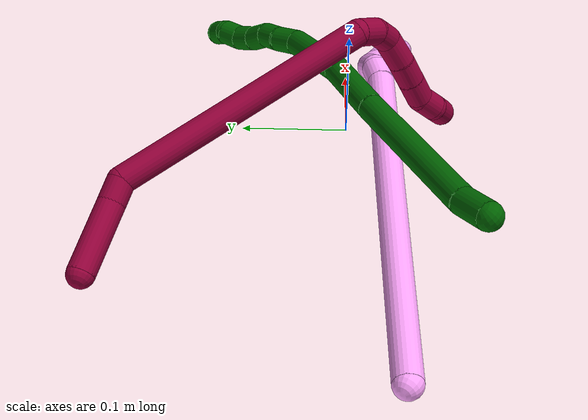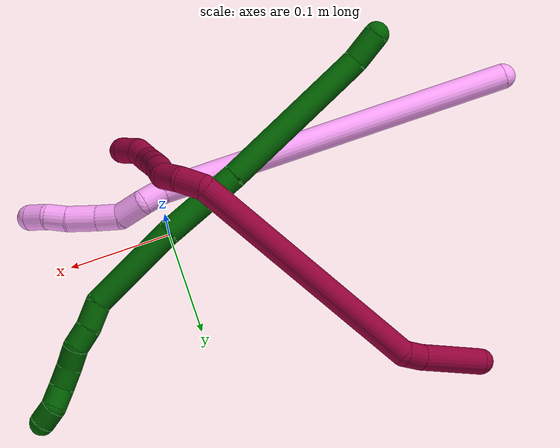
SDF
<sdf version="1.7">
 <world name="default">
  <model name="4">
   <static>0</static>
   <link name="4">
    <collision name="collision-cylinder-e_1_1_4">
     <pose>0.039311 -0.075911 -0.1561 2.68897 0.222715 0.904171</pose>
     <geometry><cylinder><radius>0.0125</radius><length>0.35595</length></cylinder></geometry>
     <surface>
      <friction><ode><mu>1.16</mu><mu2>1.16</mu2><slip1>0</slip1><slip2>0</slip2></ode></friction>
      <contact><ode><kp>1e+06</kp><kd>1</kd><max_vel>0</max_vel><min_depth>0.001</min_depth></ode></contact>
     </surface>
    </collision>
    <visual name="visual-cylinder-e_1_1_4">
     <pose>0.039311 -0.075911 -0.1561 2.68897 0.222715 0.904171</pose>
     <geometry><cylinder><radius>0.0125</radius><length>0.35595</length></cylinder></geometry>
     <material><ambient>1 0.65098 0.996078 1</ambient></material>
    </visual>
    <collision name="collision-cylinder-e_2_4_5">
     <pose>0.081927 -0.158037 -0.320658 2.50789 0.305049 0.87675</pose>
     <geometry><cylinder><radius>0.0125</radius><length>0.022007</length></cylinder></geometry>
     <surface>
      <friction><ode><mu>1.16</mu><mu2>1.16</mu2><slip1>0</slip1><slip2>0</slip2></ode></friction>
      <contact><ode><kp>1e+06</kp><kd>1</kd><max_vel>0</max_vel><min_depth>0.001</min_depth></ode></contact>
     </surface>
    </collision>
    <visual name="visual-cylinder-e_2_4_5">
     <pose>0.081927 -0.158037 -0.320658 2.50789 0.305049 0.87675</pose>
     <geometry><cylinder><radius>0.0125</radius><length>0.022007</length></cylinder></geometry>
     <material><ambient>1 0.65098 0.996078 1</ambient></material>
    </visual>
    <collision name="collision-cylinder-e_3_5_6">
     <pose>0.095321 -0.166993 -0.338134 2.84658 0.819386 2.48225</pose>
     <geometry><cylinder><radius>0.0125</radius><length>0.027614</length></cylinder></geometry>
     <surface>
      <friction><ode><mu>1.16</mu><mu2>1.16</mu2><slip1>0</slip1><slip2>0</slip2></ode></friction>
      <contact><ode><kp>1e+06</kp><kd>1</kd><max_vel>0</max_vel><min_depth>0.001</min_depth></ode></contact>
     </surface>
    </collision>
    <visual name="visual-cylinder-e_3_5_6">
     <pose>0.095321 -0.166993 -0.338134 2.84658 0.819386 2.48225</pose>
     <geometry><cylinder><radius>0.0125</radius><length>0.027614</length></cylinder></geometry>
     <material><ambient>1 0.65098 0.996078 1</ambient></material>
    </visual>
    <collision name="collision-cylinder-e_4_6_7">
     <pose>0.1105 -0.168808 -0.357362 -3.05118 0.460924 -2.76066</pose>
     <geometry><cylinder><radius>0.0125</radius><length>0.022892</length></cylinder></geometry>
     <surface>
      <friction><ode><mu>1.16</mu><mu2>1.16</mu2><slip1>0</slip1><slip2>0</slip2></ode></friction>
      <contact><ode><kp>1e+06</kp><kd>1</kd><max_vel>0</max_vel><min_depth>0.001</min_depth></ode></contact>
     </surface>
    </collision>
    <visual name="visual-cylinder-e_4_6_7">
     <pose>0.1105 -0.168808 -0.357362 -3.05118 0.460924 -2.76066</pose>
     <geometry><cylinder><radius>0.0125</radius><length>0.022892</length></cylinder></geometry>
     <material><ambient>1 0.65098 0.996078 1</ambient></material>
    </visual>
    <collision name="collision-cylinder-e_5_7_8">
     <pose>0.120918 -0.167309 -0.381543 -3.10058 0.363927 -2.91956</pose>
     <geometry><cylinder><radius>0.0125</radius><length>0.029927</length></cylinder></geometry>
     <surface>
      <friction><ode><mu>1.16</mu><mu2>1.16</mu2><slip1>0</slip1><slip2>0</slip2></ode></friction>
      <contact><ode><kp>1e+06</kp><kd>1</kd><max_vel>0</max_vel><min_depth>0.001</min_depth></ode></contact>
     </surface>
    </collision>
    <visual name="visual-cylinder-e_5_7_8">
     <pose>0.120918 -0.167309 -0.381543 -3.10058 0.363927 -2.91956</pose>
     <geometry><cylinder><radius>0.0125</radius><length>0.029927</length></cylinder></geometry>
     <material><ambient>1 0.65098 0.996078 1</ambient></material>
    </visual>
    <collision name="collision-cylinder-e_6_8_9">
     <pose>0.129749 -0.164682 -0.405223 -2.93319 0.339535 -2.04596</pose>
     <geometry><cylinder><radius>0.0125</radius><length>0.021047</length></cylinder></geometry>
     <surface>
      <friction><ode><mu>1.16</mu><mu2>1.16</mu2><slip1>0</slip1><slip2>0</slip2></ode></friction>
      <contact><ode><kp>1e+06</kp><kd>1</kd><max_vel>0</max_vel><min_depth>0.001</min_depth></ode></contact>
     </surface>
    </collision>
    <visual name="visual-cylinder-e_6_8_9">
     <pose>0.129749 -0.164682 -0.405223 -2.93319 0.339535 -2.04596</pose>
     <geometry><cylinder><radius>0.0125</radius><length>0.021047</length></cylinder></geometry>
     <material><ambient>1 0.65098 0.996078 1</ambient></material>
    </visual>
    <collision name="collision-cylinder-e_7_9_2">
     <pose>0.139239 -0.160163 -0.422918 -2.84209 0.621449 -2.26311</pose>
     <geometry><cylinder><radius>0.0125</radius><length>0.020563</length></cylinder></geometry>
     <surface>
      <friction><ode><mu>1.16</mu><mu2>1.16</mu2><slip1>0</slip1><slip2>0</slip2></ode></friction>
      <contact><ode><kp>1e+06</kp><kd>1</kd><max_vel>0</max_vel><min_depth>0.001</min_depth></ode></contact>
     </surface>
    </collision>
    <visual name="visual-cylinder-e_7_9_2">
     <pose>0.139239 -0.160163 -0.422918 -2.84209 0.621449 -2.26311</pose>
     <geometry><cylinder><radius>0.0125</radius><length>0.020563</length></cylinder></geometry>
     <material><ambient>1 0.65098 0.996078 1</ambient></material>
    </visual>
    <collision name="collision-sphere-2">
     <pose>0.145226 -0.157697 -0.430905 0 -0 0</pose>
     <geometry><sphere><radius>0.0125</radius></sphere></geometry>
     <surface>
      <friction><ode><mu>1.16</mu><mu2>1.16</mu2><slip1>0</slip1><slip2>0</slip2></ode></friction>
      <contact><ode><kp>1e+06</kp><kd>1</kd><max_vel>0</max_vel><min_depth>0.001</min_depth></ode></contact>
     </surface>
    </collision>
    <visual name="visual-sphere-2">
     <pose>0.145226 -0.157697 -0.430905 0 -0 0</pose>
     <geometry><sphere><radius>0.0125</radius></sphere></geometry>
     <material><ambient>1 0.65098 0.996078 1</ambient></material>
    </visual>
    <collision name="collision-sphere-9">
     <pose>0.133253 -0.162629 -0.414931 0 -0 0</pose>
     <geometry><sphere><radius>0.0125</radius></sphere></geometry>
     <surface>
      <friction><ode><mu>1.16</mu><mu2>1.16</mu2><slip1>0</slip1><slip2>0</slip2></ode></friction>
      <contact><ode><kp>1e+06</kp><kd>1</kd><max_vel>0</max_vel><min_depth>0.001</min_depth></ode></contact>
     </surface>
    </collision>
    <visual name="visual-sphere-9">
     <pose>0.133253 -0.162629 -0.414931 0 -0 0</pose>
     <geometry><sphere><radius>0.0125</radius></sphere></geometry>
     <material><ambient>1 0.65098 0.996078 1</ambient></material>
    </visual>
    <collision name="collision-sphere-4">
     <pose>0.078622 -0.151823 -0.3122 0 -0 0</pose>
     <geometry><sphere><radius>0.0125</radius></sphere></geometry>
     <surface>
      <friction><ode><mu>1.16</mu><mu2>1.16</mu2><slip1>0</slip1><slip2>0</slip2></ode></friction>
      <contact><ode><kp>1e+06</kp><kd>1</kd><max_vel>0</max_vel><min_depth>0.001</min_depth></ode></contact>
     </surface>
    </collision>
    <visual name="visual-sphere-4">
     <pose>0.078622 -0.151823 -0.3122 0 -0 0</pose>
     <geometry><sphere><radius>0.0125</radius></sphere></geometry>
     <material><ambient>1 0.65098 0.996078 1</ambient></material>
    </visual>
    <collision name="collision-sphere-1">
     <geometry><sphere><radius>0.0125</radius></sphere></geometry>
     <surface>
      <friction><ode><mu>1.16</mu><mu2>1.16</mu2><slip1>0</slip1><slip2>0</slip2></ode></friction>
      <contact><ode><kp>1e+06</kp><kd>1</kd><max_vel>0</max_vel><min_depth>0.001</min_depth></ode></contact>
     </surface>
    </collision>
    <visual name="visual-sphere-1">
     <geometry><sphere><radius>0.0125</radius></sphere></geometry>
     <material><ambient>1 0.65098 0.996078 1</ambient></material>
    </visual>
    <collision name="collision-sphere-8">
     <pose>0.126244 -0.166735 -0.395515 0 -0 0</pose>
     <geometry><sphere><radius>0.0125</radius></sphere></geometry>
     <surface>
      <friction><ode><mu>1.16</mu><mu2>1.16</mu2><slip1>0</slip1><slip2>0</slip2></ode></friction>
      <contact><ode><kp>1e+06</kp><kd>1</kd><max_vel>0</max_vel><min_depth>0.001</min_depth></ode></contact>
     </surface>
    </collision>
    <visual name="visual-sphere-8">
     <pose>0.126244 -0.166735 -0.395515 0 -0 0</pose>
     <geometry><sphere><radius>0.0125</radius></sphere></geometry>
     <material><ambient>1 0.65098 0.996078 1</ambient></material>
    </visual>
    <collision name="collision-sphere-5">
     <pose>0.085231 -0.164252 -0.329116 0 -0 0</pose>
     <geometry><sphere><radius>0.0125</radius></sphere></geometry>
     <surface>
      <friction><ode><mu>1.16</mu><mu2>1.16</mu2><slip1>0</slip1><slip2>0</slip2></ode></friction>
      <contact><ode><kp>1e+06</kp><kd>1</kd><max_vel>0</max_vel><min_depth>0.001</min_depth></ode></contact>
     </surface>
    </collision>
    <visual name="visual-sphere-5">
     <pose>0.085231 -0.164252 -0.329116 0 -0 0</pose>
     <geometry><sphere><radius>0.0125</radius></sphere></geometry>
     <material><ambient>1 0.65098 0.996078 1</ambient></material>
    </visual>
    <collision name="collision-sphere-6">
     <pose>0.10541 -0.169733 -0.347152 0 -0 0</pose>
     <geometry><sphere><radius>0.0125</radius></sphere></geometry>
     <surface>
      <friction><ode><mu>1.16</mu><mu2>1.16</mu2><slip1>0</slip1><slip2>0</slip2></ode></friction>
      <contact><ode><kp>1e+06</kp><kd>1</kd><max_vel>0</max_vel><min_depth>0.001</min_depth></ode></contact>
     </surface>
    </collision>
    <visual name="visual-sphere-6">
     <pose>0.10541 -0.169733 -0.347152 0 -0 0</pose>
     <geometry><sphere><radius>0.0125</radius></sphere></geometry>
     <material><ambient>1 0.65098 0.996078 1</ambient></material>
    </visual>
    <collision name="collision-sphere-7">
     <pose>0.115591 -0.167882 -0.367572 0 -0 0</pose>
     <geometry><sphere><radius>0.0125</radius></sphere></geometry>
     <surface>
      <friction><ode><mu>1.16</mu><mu2>1.16</mu2><slip1>0</slip1><slip2>0</slip2></ode></friction>
      <contact><ode><kp>1e+06</kp><kd>1</kd><max_vel>0</max_vel><min_depth>0.001</min_depth></ode></contact>
     </surface>
    </collision>
    <visual name="visual-sphere-7">
     <pose>0.115591 -0.167882 -0.367572 0 -0 0</pose>
     <geometry><sphere><radius>0.0125</radius></sphere></geometry>
     <material><ambient>1 0.65098 0.996078 1</ambient></material>
    </visual>
    <inertial>
     <pose>0.06034 -0.101482 -0.217564 0 -0 0</pose>
     <mass>0.5</mass>
     <inertia>
      <ixx>0.00517</ixx>
      <ixy>0</ixy>
      <ixz>0</ixz>
      <iyy>0.001076</iyy>
      <iyz>0</iyz>
      <izz>0.000737</izz>
     </inertia>
    </inertial>
   </link>
   <pose>-0.359016 -0.041749 0.012371 -1.86987 1.06226 0.833143</pose>
  </model>
  <model name="6">
   <static>0</static>
   <link name="6">
    <collision name="collision-cylinder-e_1_1_4">
     <pose>0.010754 0.01215 0.002873 -1.33861 0.711066 -0.571432</pose>
     <geometry><cylinder><radius>0.0125</radius><length>0.032956</length></cylinder></geometry>
     <surface>
      <friction><ode><mu>1.16</mu><mu2>1.16</mu2><slip1>0</slip1><slip2>0</slip2></ode></friction>
      <contact><ode><kp>1e+06</kp><kd>1</kd><max_vel>0</max_vel><min_depth>0.001</min_depth></ode></contact>
     </surface>
    </collision>
    <visual name="visual-cylinder-e_1_1_4">
     <pose>0.010754 0.01215 0.002873 -1.33861 0.711066 -0.571432</pose>
     <geometry><cylinder><radius>0.0125</radius><length>0.032956</length></cylinder></geometry>
     <material><ambient>0 0.392157 0.003922 1</ambient></material>
    </visual>
    <collision name="collision-cylinder-e_2_4_5">
     <pose>0.082979 0.072402 0.023586 -1.21564 0.8753 -0.6294</pose>
     <geometry><cylinder><radius>0.0125</radius><length>0.160134</length></cylinder></geometry>
     <surface>
      <friction><ode><mu>1.16</mu><mu2>1.16</mu2><slip1>0</slip1><slip2>0</slip2></ode></friction>
      <contact><ode><kp>1e+06</kp><kd>1</kd><max_vel>0</max_vel><min_depth>0.001</min_depth></ode></contact>
     </surface>
    </collision>
    <visual name="visual-cylinder-e_2_4_5">
     <pose>0.082979 0.072402 0.023586 -1.21564 0.8753 -0.6294</pose>
     <geometry><cylinder><radius>0.0125</radius><length>0.160134</length></cylinder></geometry>
     <material><ambient>0 0.392157 0.003922 1</ambient></material>
    </visual>
    <collision name="collision-cylinder-e_3_5_6">
     <pose>0.17671 0.144339 0.048089 -1.29823 0.916433 -0.716254</pose>
     <geometry><cylinder><radius>0.0125</radius><length>0.081321</length></cylinder></geometry>
     <surface>
      <friction><ode><mu>1.16</mu><mu2>1.16</mu2><slip1>0</slip1><slip2>0</slip2></ode></friction>
      <contact><ode><kp>1e+06</kp><kd>1</kd><max_vel>0</max_vel><min_depth>0.001</min_depth></ode></contact>
     </surface>
    </collision>
    <visual name="visual-cylinder-e_3_5_6">
     <pose>0.17671 0.144339 0.048089 -1.29823 0.916433 -0.716254</pose>
     <geometry><cylinder><radius>0.0125</radius><length>0.081321</length></cylinder></geometry>
     <material><ambient>0 0.392157 0.003922 1</ambient></material>
    </visual>
    <collision name="collision-cylinder-e_4_6_7">
     <pose>0.243275 0.200499 0.059023 -1.43939 0.810761 -0.719578</pose>
     <geometry><cylinder><radius>0.0125</radius><length>0.094656</length></cylinder></geometry>
     <surface>
      <friction><ode><mu>1.16</mu><mu2>1.16</mu2><slip1>0</slip1><slip2>0</slip2></ode></friction>
      <contact><ode><kp>1e+06</kp><kd>1</kd><max_vel>0</max_vel><min_depth>0.001</min_depth></ode></contact>
     </surface>
    </collision>
    <visual name="visual-cylinder-e_4_6_7">
     <pose>0.243275 0.200499 0.059023 -1.43939 0.810761 -0.719578</pose>
     <geometry><cylinder><radius>0.0125</radius><length>0.094656</length></cylinder></geometry>
     <material><ambient>0 0.392157 0.003922 1</ambient></material>
    </visual>
    <collision name="collision-cylinder-e_5_7_8">
     <pose>0.282869 0.243773 0.066863 -1.25586 0.430597 -0.314885</pose>
     <geometry><cylinder><radius>0.0125</radius><length>0.025344</length></cylinder></geometry>
     <surface>
      <friction><ode><mu>1.16</mu><mu2>1.16</mu2><slip1>0</slip1><slip2>0</slip2></ode></friction>
      <contact><ode><kp>1e+06</kp><kd>1</kd><max_vel>0</max_vel><min_depth>0.001</min_depth></ode></contact>
     </surface>
    </collision>
    <visual name="visual-cylinder-e_5_7_8">
     <pose>0.282869 0.243773 0.066863 -1.25586 0.430597 -0.314885</pose>
     <geometry><cylinder><radius>0.0125</radius><length>0.025344</length></cylinder></geometry>
     <material><ambient>0 0.392157 0.003922 1</ambient></material>
    </visual>
    <collision name="collision-cylinder-e_6_8_9">
     <pose>0.294584 0.263793 0.072388 -1.35821 0.605632 -0.494063</pose>
     <geometry><cylinder><radius>0.0125</radius><length>0.022575</length></cylinder></geometry>
     <surface>
      <friction><ode><mu>1.16</mu><mu2>1.16</mu2><slip1>0</slip1><slip2>0</slip2></ode></friction>
      <contact><ode><kp>1e+06</kp><kd>1</kd><max_vel>0</max_vel><min_depth>0.001</min_depth></ode></contact>
     </surface>
    </collision>
    <visual name="visual-cylinder-e_6_8_9">
     <pose>0.294584 0.263793 0.072388 -1.35821 0.605632 -0.494063</pose>
     <geometry><cylinder><radius>0.0125</radius><length>0.022575</length></cylinder></geometry>
     <material><ambient>0 0.392157 0.003922 1</ambient></material>
    </visual>
    <collision name="collision-cylinder-e_7_9_10">
     <pose>0.304154 0.283091 0.07439 -1.56646 0.298247 -0.296974</pose>
     <geometry><cylinder><radius>0.0125</radius><length>0.021398</length></cylinder></geometry>
     <surface>
      <friction><ode><mu>1.16</mu><mu2>1.16</mu2><slip1>0</slip1><slip2>0</slip2></ode></friction>
      <contact><ode><kp>1e+06</kp><kd>1</kd><max_vel>0</max_vel><min_depth>0.001</min_depth></ode></contact>
     </surface>
    </collision>
    <visual name="visual-cylinder-e_7_9_10">
     <pose>0.304154 0.283091 0.07439 -1.56646 0.298247 -0.296974</pose>
     <geometry><cylinder><radius>0.0125</radius><length>0.021398</length></cylinder></geometry>
     <material><ambient>0 0.392157 0.003922 1</ambient></material>
    </visual>
    <collision name="collision-cylinder-e_8_10_11">
     <pose>0.311344 0.302974 0.076278 -1.38213 0.390452 -0.324248</pose>
     <geometry><cylinder><radius>0.0125</radius><length>0.021263</length></cylinder></geometry>
     <surface>
      <friction><ode><mu>1.16</mu><mu2>1.16</mu2><slip1>0</slip1><slip2>0</slip2></ode></friction>
      <contact><ode><kp>1e+06</kp><kd>1</kd><max_vel>0</max_vel><min_depth>0.001</min_depth></ode></contact>
     </surface>
    </collision>
    <visual name="visual-cylinder-e_8_10_11">
     <pose>0.311344 0.302974 0.076278 -1.38213 0.390452 -0.324248</pose>
     <geometry><cylinder><radius>0.0125</radius><length>0.021263</length></cylinder></geometry>
     <material><ambient>0 0.392157 0.003922 1</ambient></material>
    </visual>
    <collision name="collision-cylinder-e_9_11_12">
     <pose>0.319912 0.320574 0.082589 -1.05853 0.460627 -0.272601</pose>
     <geometry><cylinder><radius>0.0125</radius><length>0.020345</length></cylinder></geometry>
     <surface>
      <friction><ode><mu>1.16</mu><mu2>1.16</mu2><slip1>0</slip1><slip2>0</slip2></ode></friction>
      <contact><ode><kp>1e+06</kp><kd>1</kd><max_vel>0</max_vel><min_depth>0.001</min_depth></ode></contact>
     </surface>
    </collision>
    <visual name="visual-cylinder-e_9_11_12">
     <pose>0.319912 0.320574 0.082589 -1.05853 0.460627 -0.272601</pose>
     <geometry><cylinder><radius>0.0125</radius><length>0.020345</length></cylinder></geometry>
     <material><ambient>0 0.392157 0.003922 1</ambient></material>
    </visual>
    <collision name="collision-cylinder-e_10_12_2">
     <pose>0.329817 0.336912 0.086264 -1.66478 0.568094 -0.620774</pose>
     <geometry><cylinder><radius>0.0125</radius><length>0.020008</length></cylinder></geometry>
     <surface>
      <friction><ode><mu>1.16</mu><mu2>1.16</mu2><slip1>0</slip1><slip2>0</slip2></ode></friction>
      <contact><ode><kp>1e+06</kp><kd>1</kd><max_vel>0</max_vel><min_depth>0.001</min_depth></ode></contact>
     </surface>
    </collision>
    <visual name="visual-cylinder-e_10_12_2">
     <pose>0.329817 0.336912 0.086264 -1.66478 0.568094 -0.620774</pose>
     <geometry><cylinder><radius>0.0125</radius><length>0.020008</length></cylinder></geometry>
     <material><ambient>0 0.392157 0.003922 1</ambient></material>
    </visual>
    <collision name="collision-sphere-2">
     <pose>0.335199 0.345307 0.085472 0 -0 0</pose>
     <geometry><sphere><radius>0.0125</radius></sphere></geometry>
     <surface>
      <friction><ode><mu>1.16</mu><mu2>1.16</mu2><slip1>0</slip1><slip2>0</slip2></ode></friction>
      <contact><ode><kp>1e+06</kp><kd>1</kd><max_vel>0</max_vel><min_depth>0.001</min_depth></ode></contact>
     </surface>
    </collision>
    <visual name="visual-sphere-2">
     <pose>0.335199 0.345307 0.085472 0 -0 0</pose>
     <geometry><sphere><radius>0.0125</radius></sphere></geometry>
     <material><ambient>0 0.392157 0.003922 1</ambient></material>
    </visual>
    <collision name="collision-sphere-12">
     <pose>0.324434 0.328516 0.087055 0 -0 0</pose>
     <geometry><sphere><radius>0.0125</radius></sphere></geometry>
     <surface>
      <friction><ode><mu>1.16</mu><mu2>1.16</mu2><slip1>0</slip1><slip2>0</slip2></ode></friction>
      <contact><ode><kp>1e+06</kp><kd>1</kd><max_vel>0</max_vel><min_depth>0.001</min_depth></ode></contact>
     </surface>
    </collision>
    <visual name="visual-sphere-12">
     <pose>0.324434 0.328516 0.087055 0 -0 0</pose>
     <geometry><sphere><radius>0.0125</radius></sphere></geometry>
     <material><ambient>0 0.392157 0.003922 1</ambient></material>
    </visual>
    <collision name="collision-sphere-11">
     <pose>0.315391 0.312631 0.078122 0 -0 0</pose>
     <geometry><sphere><radius>0.0125</radius></sphere></geometry>
     <surface>
      <friction><ode><mu>1.16</mu><mu2>1.16</mu2><slip1>0</slip1><slip2>0</slip2></ode></friction>
      <contact><ode><kp>1e+06</kp><kd>1</kd><max_vel>0</max_vel><min_depth>0.001</min_depth></ode></contact>
     </surface>
    </collision>
    <visual name="visual-sphere-11">
     <pose>0.315391 0.312631 0.078122 0 -0 0</pose>
     <geometry><sphere><radius>0.0125</radius></sphere></geometry>
     <material><ambient>0 0.392157 0.003922 1</ambient></material>
    </visual>
    <collision name="collision-sphere-10">
     <pose>0.307298 0.293317 0.074434 0 -0 0</pose>
     <geometry><sphere><radius>0.0125</radius></sphere></geometry>
     <surface>
      <friction><ode><mu>1.16</mu><mu2>1.16</mu2><slip1>0</slip1><slip2>0</slip2></ode></friction>
      <contact><ode><kp>1e+06</kp><kd>1</kd><max_vel>0</max_vel><min_depth>0.001</min_depth></ode></contact>
     </surface>
    </collision>
    <visual name="visual-sphere-10">
     <pose>0.307298 0.293317 0.074434 0 -0 0</pose>
     <geometry><sphere><radius>0.0125</radius></sphere></geometry>
     <material><ambient>0 0.392157 0.003922 1</ambient></material>
    </visual>
    <collision name="collision-sphere-9">
     <pose>0.30101 0.272864 0.074346 0 -0 0</pose>
     <geometry><sphere><radius>0.0125</radius></sphere></geometry>
     <surface>
      <friction><ode><mu>1.16</mu><mu2>1.16</mu2><slip1>0</slip1><slip2>0</slip2></ode></friction>
      <contact><ode><kp>1e+06</kp><kd>1</kd><max_vel>0</max_vel><min_depth>0.001</min_depth></ode></contact>
     </surface>
    </collision>
    <visual name="visual-sphere-9">
     <pose>0.30101 0.272864 0.074346 0 -0 0</pose>
     <geometry><sphere><radius>0.0125</radius></sphere></geometry>
     <material><ambient>0 0.392157 0.003922 1</ambient></material>
    </visual>
    <collision name="collision-sphere-4">
     <pose>0.021508 0.0243 0.005746 0 -0 0</pose>
     <geometry><sphere><radius>0.0125</radius></sphere></geometry>
     <surface>
      <friction><ode><mu>1.16</mu><mu2>1.16</mu2><slip1>0</slip1><slip2>0</slip2></ode></friction>
      <contact><ode><kp>1e+06</kp><kd>1</kd><max_vel>0</max_vel><min_depth>0.001</min_depth></ode></contact>
     </surface>
    </collision>
    <visual name="visual-sphere-4">
     <pose>0.021508 0.0243 0.005746 0 -0 0</pose>
     <geometry><sphere><radius>0.0125</radius></sphere></geometry>
     <material><ambient>0 0.392157 0.003922 1</ambient></material>
    </visual>
    <collision name="collision-sphere-1">
     <geometry><sphere><radius>0.0125</radius></sphere></geometry>
     <surface>
      <friction><ode><mu>1.16</mu><mu2>1.16</mu2><slip1>0</slip1><slip2>0</slip2></ode></friction>
      <contact><ode><kp>1e+06</kp><kd>1</kd><max_vel>0</max_vel><min_depth>0.001</min_depth></ode></contact>
     </surface>
    </collision>
    <visual name="visual-sphere-1">
     <geometry><sphere><radius>0.0125</radius></sphere></geometry>
     <material><ambient>0 0.392157 0.003922 1</ambient></material>
    </visual>
    <collision name="collision-sphere-8">
     <pose>0.288159 0.254722 0.07043 0 -0 0</pose>
     <geometry><sphere><radius>0.0125</radius></sphere></geometry>
     <surface>
      <friction><ode><mu>1.16</mu><mu2>1.16</mu2><slip1>0</slip1><slip2>0</slip2></ode></friction>
      <contact><ode><kp>1e+06</kp><kd>1</kd><max_vel>0</max_vel><min_depth>0.001</min_depth></ode></contact>
     </surface>
    </collision>
    <visual name="visual-sphere-8">
     <pose>0.288159 0.254722 0.07043 0 -0 0</pose>
     <geometry><sphere><radius>0.0125</radius></sphere></geometry>
     <material><ambient>0 0.392157 0.003922 1</ambient></material>
    </visual>
    <collision name="collision-sphere-5">
     <pose>0.144449 0.120504 0.041426 0 -0 0</pose>
     <geometry><sphere><radius>0.0125</radius></sphere></geometry>
     <surface>
      <friction><ode><mu>1.16</mu><mu2>1.16</mu2><slip1>0</slip1><slip2>0</slip2></ode></friction>
      <contact><ode><kp>1e+06</kp><kd>1</kd><max_vel>0</max_vel><min_depth>0.001</min_depth></ode></contact>
     </surface>
    </collision>
    <visual name="visual-sphere-5">
     <pose>0.144449 0.120504 0.041426 0 -0 0</pose>
     <geometry><sphere><radius>0.0125</radius></sphere></geometry>
     <material><ambient>0 0.392157 0.003922 1</ambient></material>
    </visual>
    <collision name="collision-sphere-6">
     <pose>0.208971 0.168173 0.054751 0 -0 0</pose>
     <geometry><sphere><radius>0.0125</radius></sphere></geometry>
     <surface>
      <friction><ode><mu>1.16</mu><mu2>1.16</mu2><slip1>0</slip1><slip2>0</slip2></ode></friction>
      <contact><ode><kp>1e+06</kp><kd>1</kd><max_vel>0</max_vel><min_depth>0.001</min_depth></ode></contact>
     </surface>
    </collision>
    <visual name="visual-sphere-6">
     <pose>0.208971 0.168173 0.054751 0 -0 0</pose>
     <geometry><sphere><radius>0.0125</radius></sphere></geometry>
     <material><ambient>0 0.392157 0.003922 1</ambient></material>
    </visual>
    <collision name="collision-sphere-7">
     <pose>0.27758 0.232824 0.063296 0 -0 0</pose>
     <geometry><sphere><radius>0.0125</radius></sphere></geometry>
     <surface>
      <friction><ode><mu>1.16</mu><mu2>1.16</mu2><slip1>0</slip1><slip2>0</slip2></ode></friction>
      <contact><ode><kp>1e+06</kp><kd>1</kd><max_vel>0</max_vel><min_depth>0.001</min_depth></ode></contact>
     </surface>
    </collision>
    <visual name="visual-sphere-7">
     <pose>0.27758 0.232824 0.063296 0 -0 0</pose>
     <geometry><sphere><radius>0.0125</radius></sphere></geometry>
     <material><ambient>0 0.392157 0.003922 1</ambient></material>
    </visual>
    <inertial>
     <pose>0.18219 0.161214 0.046636 0 -0 0</pose>
     <mass>0.5</mass>
     <inertia>
      <ixx>8.9e-05</ixx>
      <ixy>0</ixy>
      <ixz>0</ixz>
      <iyy>0.000165</iyy>
      <iyz>0</iyz>
      <izz>-0.000661</izz>
     </inertia>
    </inertial>
   </link>
   <pose>-0.246821 -0.104635 0.082214 -0.637377 -0.190888 -0.225639</pose>
  </model>
  <model name="8">
   <static>0</static>
   <link name="8">
    <collision name="collision-cylinder-e_1_1_4">
     <pose>0.002451 0.003766 -0.03272 -3.02699 0.074266 -1.1494</pose>
     <geometry><cylinder><radius>0.0125</radius><length>0.066055</length></cylinder></geometry>
     <surface>
      <friction><ode><mu>1.16</mu><mu2>1.16</mu2><slip1>0</slip1><slip2>0</slip2></ode></friction>
      <contact><ode><kp>1e+06</kp><kd>1</kd><max_vel>0</max_vel><min_depth>0.001</min_depth></ode></contact>
     </surface>
    </collision>
    <visual name="visual-cylinder-e_1_1_4">
     <pose>0.002451 0.003766 -0.03272 -3.02699 0.074266 -1.1494</pose>
     <geometry><cylinder><radius>0.0125</radius><length>0.066055</length></cylinder></geometry>
     <material><ambient>0.584314 0 0.227451 1</ambient></material>
    </visual>
    <collision name="collision-cylinder-e_2_4_5">
     <pose>0.006643 0.010508 -0.075662 -2.85831 0.162221 -1.03623</pose>
     <geometry><cylinder><radius>0.0125</radius><length>0.021575</length></cylinder></geometry>
     <surface>
      <friction><ode><mu>1.16</mu><mu2>1.16</mu2><slip1>0</slip1><slip2>0</slip2></ode></friction>
      <contact><ode><kp>1e+06</kp><kd>1</kd><max_vel>0</max_vel><min_depth>0.001</min_depth></ode></contact>
     </surface>
    </collision>
    <visual name="visual-cylinder-e_2_4_5">
     <pose>0.006643 0.010508 -0.075662 -2.85831 0.162221 -1.03623</pose>
     <geometry><cylinder><radius>0.0125</radius><length>0.021575</length></cylinder></geometry>
     <material><ambient>0.584314 0 0.227451 1</ambient></material>
    </visual>
    <collision name="collision-cylinder-e_3_5_6">
     <pose>0.087249 0.010514 -0.180709 3.11028 0.693513 3.05498</pose>
     <geometry><cylinder><radius>0.0125</radius><length>0.24674</length></cylinder></geometry>
     <surface>
      <friction><ode><mu>1.16</mu><mu2>1.16</mu2><slip1>0</slip1><slip2>0</slip2></ode></friction>
      <contact><ode><kp>1e+06</kp><kd>1</kd><max_vel>0</max_vel><min_depth>0.001</min_depth></ode></contact>
     </surface>
    </collision>
    <visual name="visual-cylinder-e_3_5_6">
     <pose>0.087249 0.010514 -0.180709 3.11028 0.693513 3.05498</pose>
     <geometry><cylinder><radius>0.0125</radius><length>0.24674</length></cylinder></geometry>
     <material><ambient>0.584314 0 0.227451 1</ambient></material>
    </visual>
    <collision name="collision-cylinder-e_4_6_7">
     <pose>0.17094 -0.000477 -0.284329 2.40218 0.385385 0.932868</pose>
     <geometry><cylinder><radius>0.0125</radius><length>0.025689</length></cylinder></geometry>
     <surface>
      <friction><ode><mu>1.16</mu><mu2>1.16</mu2><slip1>0</slip1><slip2>0</slip2></ode></friction>
      <contact><ode><kp>1e+06</kp><kd>1</kd><max_vel>0</max_vel><min_depth>0.001</min_depth></ode></contact>
     </surface>
    </collision>
    <visual name="visual-cylinder-e_4_6_7">
     <pose>0.17094 -0.000477 -0.284329 2.40218 0.385385 0.932868</pose>
     <geometry><cylinder><radius>0.0125</radius><length>0.025689</length></cylinder></geometry>
     <material><ambient>0.584314 0 0.227451 1</ambient></material>
    </visual>
    <collision name="collision-cylinder-e_5_7_8">
     <pose>0.178861 -0.01861 -0.29791 2.01293 0.269661 0.42222</pose>
     <geometry><cylinder><radius>0.0125</radius><length>0.023216</length></cylinder></geometry>
     <surface>
      <friction><ode><mu>1.16</mu><mu2>1.16</mu2><slip1>0</slip1><slip2>0</slip2></ode></friction>
      <contact><ode><kp>1e+06</kp><kd>1</kd><max_vel>0</max_vel><min_depth>0.001</min_depth></ode></contact>
     </surface>
    </collision>
    <visual name="visual-cylinder-e_5_7_8">
     <pose>0.178861 -0.01861 -0.29791 2.01293 0.269661 0.42222</pose>
     <geometry><cylinder><radius>0.0125</radius><length>0.023216</length></cylinder></geometry>
     <material><ambient>0.584314 0 0.227451 1</ambient></material>
    </visual>
    <collision name="collision-cylinder-e_6_8_9">
     <pose>0.187496 -0.041301 -0.300728 1.41545 0.410535 0.352566</pose>
     <geometry><cylinder><radius>0.0125</radius><length>0.027772</length></cylinder></geometry>
     <surface>
      <friction><ode><mu>1.16</mu><mu2>1.16</mu2><slip1>0</slip1><slip2>0</slip2></ode></friction>
      <contact><ode><kp>1e+06</kp><kd>1</kd><max_vel>0</max_vel><min_depth>0.001</min_depth></ode></contact>
     </surface>
    </collision>
    <visual name="visual-cylinder-e_6_8_9">
     <pose>0.187496 -0.041301 -0.300728 1.41545 0.410535 0.352566</pose>
     <geometry><cylinder><radius>0.0125</radius><length>0.027772</length></cylinder></geometry>
     <material><ambient>0.584314 0 0.227451 1</ambient></material>
    </visual>
    <collision name="collision-cylinder-e_7_9_10">
     <pose>0.196706 -0.064982 -0.297523 1.46006 0.317353 0.284497</pose>
     <geometry><cylinder><radius>0.0125</radius><length>0.023516</length></cylinder></geometry>
     <surface>
      <friction><ode><mu>1.16</mu><mu2>1.16</mu2><slip1>0</slip1><slip2>0</slip2></ode></friction>
      <contact><ode><kp>1e+06</kp><kd>1</kd><max_vel>0</max_vel><min_depth>0.001</min_depth></ode></contact>
     </surface>
    </collision>
    <visual name="visual-cylinder-e_7_9_10">
     <pose>0.196706 -0.064982 -0.297523 1.46006 0.317353 0.284497</pose>
     <geometry><cylinder><radius>0.0125</radius><length>0.023516</length></cylinder></geometry>
     <material><ambient>0.584314 0 0.227451 1</ambient></material>
    </visual>
    <collision name="collision-cylinder-e_8_10_11">
     <pose>0.203933 -0.087301 -0.295261 1.47941 0.305942 0.27955</pose>
     <geometry><cylinder><radius>0.0125</radius><length>0.023623</length></cylinder></geometry>
     <surface>
      <friction><ode><mu>1.16</mu><mu2>1.16</mu2><slip1>0</slip1><slip2>0</slip2></ode></friction>
      <contact><ode><kp>1e+06</kp><kd>1</kd><max_vel>0</max_vel><min_depth>0.001</min_depth></ode></contact>
     </surface>
    </collision>
    <visual name="visual-cylinder-e_8_10_11">
     <pose>0.203933 -0.087301 -0.295261 1.47941 0.305942 0.27955</pose>
     <geometry><cylinder><radius>0.0125</radius><length>0.023623</length></cylinder></geometry>
     <material><ambient>0.584314 0 0.227451 1</ambient></material>
    </visual>
    <collision name="collision-cylinder-e_9_11_12">
     <pose>0.212918 -0.107012 -0.296307 1.81024 0.555493 0.696581</pose>
     <geometry><cylinder><radius>0.0125</radius><length>0.020584</length></cylinder></geometry>
     <surface>
      <friction><ode><mu>1.16</mu><mu2>1.16</mu2><slip1>0</slip1><slip2>0</slip2></ode></friction>
      <contact><ode><kp>1e+06</kp><kd>1</kd><max_vel>0</max_vel><min_depth>0.001</min_depth></ode></contact>
     </surface>
    </collision>
    <visual name="visual-cylinder-e_9_11_12">
     <pose>0.212918 -0.107012 -0.296307 1.81024 0.555493 0.696581</pose>
     <geometry><cylinder><radius>0.0125</radius><length>0.020584</length></cylinder></geometry>
     <material><ambient>0.584314 0 0.227451 1</ambient></material>
    </visual>
    <collision name="collision-cylinder-e_10_12_2">
     <pose>0.219992 -0.124787 -0.303267 2.05545 0.155641 0.25695</pose>
     <geometry><cylinder><radius>0.0125</radius><length>0.021231</length></cylinder></geometry>
     <surface>
      <friction><ode><mu>1.16</mu><mu2>1.16</mu2><slip1>0</slip1><slip2>0</slip2></ode></friction>
      <contact><ode><kp>1e+06</kp><kd>1</kd><max_vel>0</max_vel><min_depth>0.001</min_depth></ode></contact>
     </surface>
    </collision>
    <visual name="visual-cylinder-e_10_12_2">
     <pose>0.219992 -0.124787 -0.303267 2.05545 0.155641 0.25695</pose>
     <geometry><cylinder><radius>0.0125</radius><length>0.021231</length></cylinder></geometry>
     <material><ambient>0.584314 0 0.227451 1</ambient></material>
    </visual>
    <collision name="collision-sphere-2">
     <pose>0.221637 -0.134066 -0.308153 0 -0 0</pose>
     <geometry><sphere><radius>0.0125</radius></sphere></geometry>
     <surface>
      <friction><ode><mu>1.16</mu><mu2>1.16</mu2><slip1>0</slip1><slip2>0</slip2></ode></friction>
      <contact><ode><kp>1e+06</kp><kd>1</kd><max_vel>0</max_vel><min_depth>0.001</min_depth></ode></contact>
     </surface>
    </collision>
    <visual name="visual-sphere-2">
     <pose>0.221637 -0.134066 -0.308153 0 -0 0</pose>
     <geometry><sphere><radius>0.0125</radius></sphere></geometry>
     <material><ambient>0.584314 0 0.227451 1</ambient></material>
    </visual>
    <collision name="collision-sphere-12">
     <pose>0.218346 -0.115508 -0.298381 0 -0 0</pose>
     <geometry><sphere><radius>0.0125</radius></sphere></geometry>
     <surface>
      <friction><ode><mu>1.16</mu><mu2>1.16</mu2><slip1>0</slip1><slip2>0</slip2></ode></friction>
      <contact><ode><kp>1e+06</kp><kd>1</kd><max_vel>0</max_vel><min_depth>0.001</min_depth></ode></contact>
     </surface>
    </collision>
    <visual name="visual-sphere-12">
     <pose>0.218346 -0.115508 -0.298381 0 -0 0</pose>
     <geometry><sphere><radius>0.0125</radius></sphere></geometry>
     <material><ambient>0.584314 0 0.227451 1</ambient></material>
    </visual>
    <collision name="collision-sphere-11">
     <pose>0.207491 -0.098517 -0.294233 0 -0 0</pose>
     <geometry><sphere><radius>0.0125</radius></sphere></geometry>
     <surface>
      <friction><ode><mu>1.16</mu><mu2>1.16</mu2><slip1>0</slip1><slip2>0</slip2></ode></friction>
      <contact><ode><kp>1e+06</kp><kd>1</kd><max_vel>0</max_vel><min_depth>0.001</min_depth></ode></contact>
     </surface>
    </collision>
    <visual name="visual-sphere-11">
     <pose>0.207491 -0.098517 -0.294233 0 -0 0</pose>
     <geometry><sphere><radius>0.0125</radius></sphere></geometry>
     <material><ambient>0.584314 0 0.227451 1</ambient></material>
    </visual>
    <collision name="collision-sphere-10">
     <pose>0.200376 -0.076085 -0.296289 0 -0 0</pose>
     <geometry><sphere><radius>0.0125</radius></sphere></geometry>
     <surface>
      <friction><ode><mu>1.16</mu><mu2>1.16</mu2><slip1>0</slip1><slip2>0</slip2></ode></friction>
      <contact><ode><kp>1e+06</kp><kd>1</kd><max_vel>0</max_vel><min_depth>0.001</min_depth></ode></contact>
     </surface>
    </collision>
    <visual name="visual-sphere-10">
     <pose>0.200376 -0.076085 -0.296289 0 -0 0</pose>
     <geometry><sphere><radius>0.0125</radius></sphere></geometry>
     <material><ambient>0.584314 0 0.227451 1</ambient></material>
    </visual>
    <collision name="collision-sphere-9">
     <pose>0.193037 -0.05388 -0.298758 0 -0 0</pose>
     <geometry><sphere><radius>0.0125</radius></sphere></geometry>
     <surface>
      <friction><ode><mu>1.16</mu><mu2>1.16</mu2><slip1>0</slip1><slip2>0</slip2></ode></friction>
      <contact><ode><kp>1e+06</kp><kd>1</kd><max_vel>0</max_vel><min_depth>0.001</min_depth></ode></contact>
     </surface>
    </collision>
    <visual name="visual-sphere-9">
     <pose>0.193037 -0.05388 -0.298758 0 -0 0</pose>
     <geometry><sphere><radius>0.0125</radius></sphere></geometry>
     <material><ambient>0.584314 0 0.227451 1</ambient></material>
    </visual>
    <collision name="collision-sphere-4">
     <pose>0.004901 0.007533 -0.06544 0 -0 0</pose>
     <geometry><sphere><radius>0.0125</radius></sphere></geometry>
     <surface>
      <friction><ode><mu>1.16</mu><mu2>1.16</mu2><slip1>0</slip1><slip2>0</slip2></ode></friction>
      <contact><ode><kp>1e+06</kp><kd>1</kd><max_vel>0</max_vel><min_depth>0.001</min_depth></ode></contact>
     </surface>
    </collision>
    <visual name="visual-sphere-4">
     <pose>0.004901 0.007533 -0.06544 0 -0 0</pose>
     <geometry><sphere><radius>0.0125</radius></sphere></geometry>
     <material><ambient>0.584314 0 0.227451 1</ambient></material>
    </visual>
    <collision name="collision-sphere-1">
     <geometry><sphere><radius>0.0125</radius></sphere></geometry>
     <surface>
      <friction><ode><mu>1.16</mu><mu2>1.16</mu2><slip1>0</slip1><slip2>0</slip2></ode></friction>
      <contact><ode><kp>1e+06</kp><kd>1</kd><max_vel>0</max_vel><min_depth>0.001</min_depth></ode></contact>
     </surface>
    </collision>
    <visual name="visual-sphere-1">
     <geometry><sphere><radius>0.0125</radius></sphere></geometry>
     <material><ambient>0.584314 0 0.227451 1</ambient></material>
    </visual>
    <collision name="collision-sphere-8">
     <pose>0.181954 -0.028723 -0.302698 0 -0 0</pose>
     <geometry><sphere><radius>0.0125</radius></sphere></geometry>
     <surface>
      <friction><ode><mu>1.16</mu><mu2>1.16</mu2><slip1>0</slip1><slip2>0</slip2></ode></friction>
      <contact><ode><kp>1e+06</kp><kd>1</kd><max_vel>0</max_vel><min_depth>0.001</min_depth></ode></contact>
     </surface>
    </collision>
    <visual name="visual-sphere-8">
     <pose>0.181954 -0.028723 -0.302698 0 -0 0</pose>
     <geometry><sphere><radius>0.0125</radius></sphere></geometry>
     <material><ambient>0.584314 0 0.227451 1</ambient></material>
    </visual>
    <collision name="collision-sphere-5">
     <pose>0.008386 0.013484 -0.085884 0 -0 0</pose>
     <geometry><sphere><radius>0.0125</radius></sphere></geometry>
     <surface>
      <friction><ode><mu>1.16</mu><mu2>1.16</mu2><slip1>0</slip1><slip2>0</slip2></ode></friction>
      <contact><ode><kp>1e+06</kp><kd>1</kd><max_vel>0</max_vel><min_depth>0.001</min_depth></ode></contact>
     </surface>
    </collision>
    <visual name="visual-sphere-5">
     <pose>0.008386 0.013484 -0.085884 0 -0 0</pose>
     <geometry><sphere><radius>0.0125</radius></sphere></geometry>
     <material><ambient>0.584314 0 0.227451 1</ambient></material>
    </visual>
    <collision name="collision-sphere-6">
     <pose>0.166112 0.007543 -0.275535 0 -0 0</pose>
     <geometry><sphere><radius>0.0125</radius></sphere></geometry>
     <surface>
      <friction><ode><mu>1.16</mu><mu2>1.16</mu2><slip1>0</slip1><slip2>0</slip2></ode></friction>
      <contact><ode><kp>1e+06</kp><kd>1</kd><max_vel>0</max_vel><min_depth>0.001</min_depth></ode></contact>
     </surface>
    </collision>
    <visual name="visual-sphere-6">
     <pose>0.166112 0.007543 -0.275535 0 -0 0</pose>
     <geometry><sphere><radius>0.0125</radius></sphere></geometry>
     <material><ambient>0.584314 0 0.227451 1</ambient></material>
    </visual>
    <collision name="collision-sphere-7">
     <pose>0.175769 -0.008497 -0.293123 0 -0 0</pose>
     <geometry><sphere><radius>0.0125</radius></sphere></geometry>
     <surface>
      <friction><ode><mu>1.16</mu><mu2>1.16</mu2><slip1>0</slip1><slip2>0</slip2></ode></friction>
      <contact><ode><kp>1e+06</kp><kd>1</kd><max_vel>0</max_vel><min_depth>0.001</min_depth></ode></contact>
     </surface>
    </collision>
    <visual name="visual-sphere-7">
     <pose>0.175769 -0.008497 -0.293123 0 -0 0</pose>
     <geometry><sphere><radius>0.0125</radius></sphere></geometry>
     <material><ambient>0.584314 0 0.227451 1</ambient></material>
    </visual>
    <inertial>
     <pose>0.108161 -0.013928 -0.194927 0 -0 0</pose>
     <mass>0.5</mass>
     <inertia>
      <ixx>-0.000862</ixx>
      <ixy>0</ixy>
      <ixz>0</ixz>
      <iyy>0.0013</iyy>
      <iyz>0</iyz>
      <izz>-0.000798</izz>
     </inertia>
    </inertial>
   </link>
   <pose>-0.242547 0.216281 0.012268 1.9267 -0.083386 -1.85697</pose>
  </model>
 </world>
</sdf>
